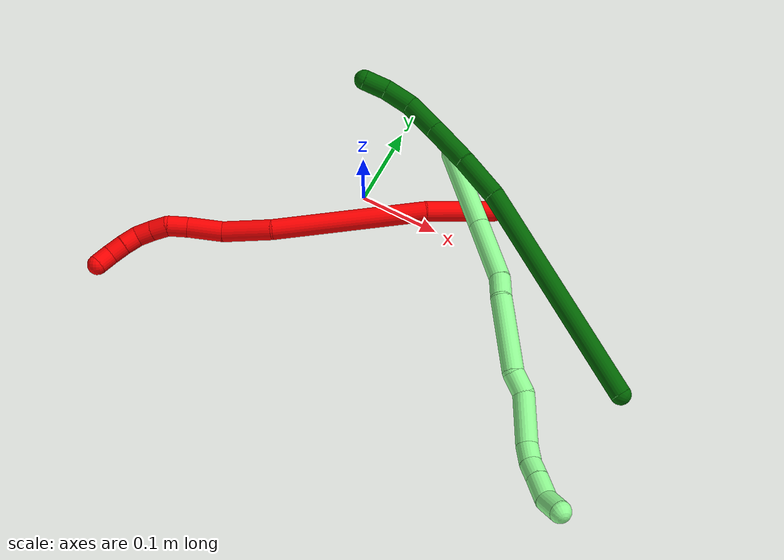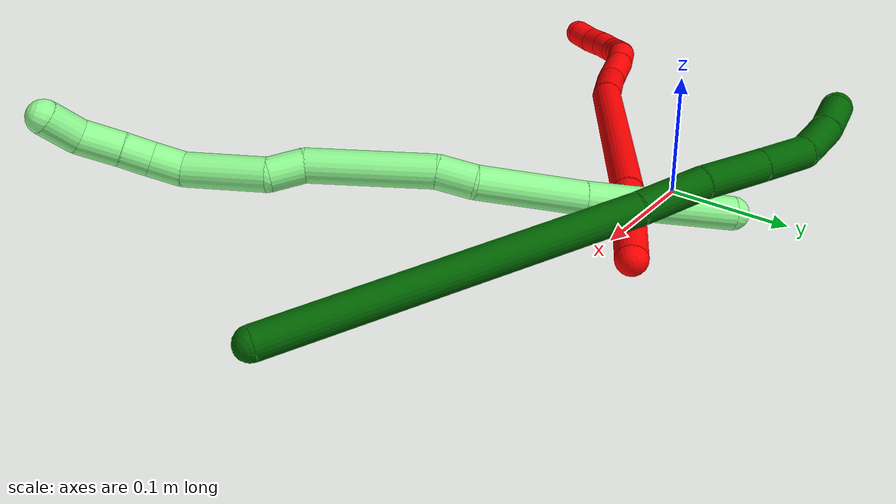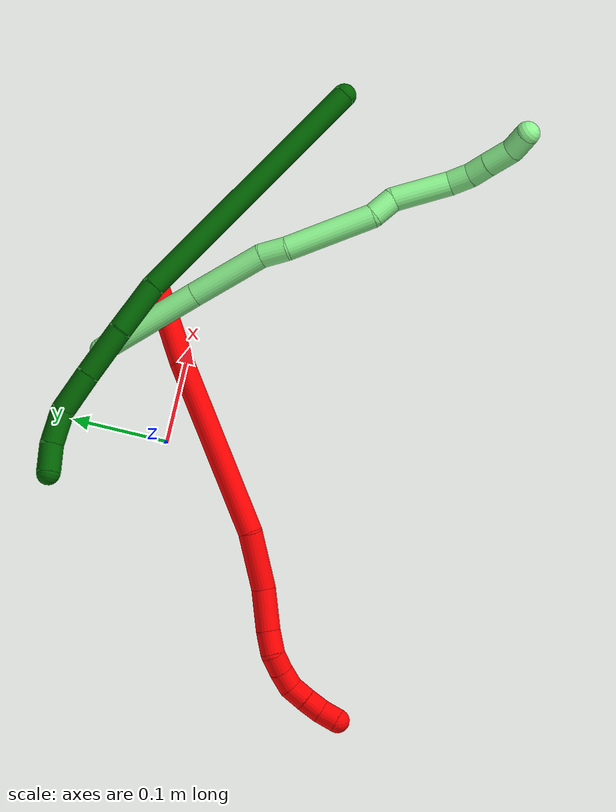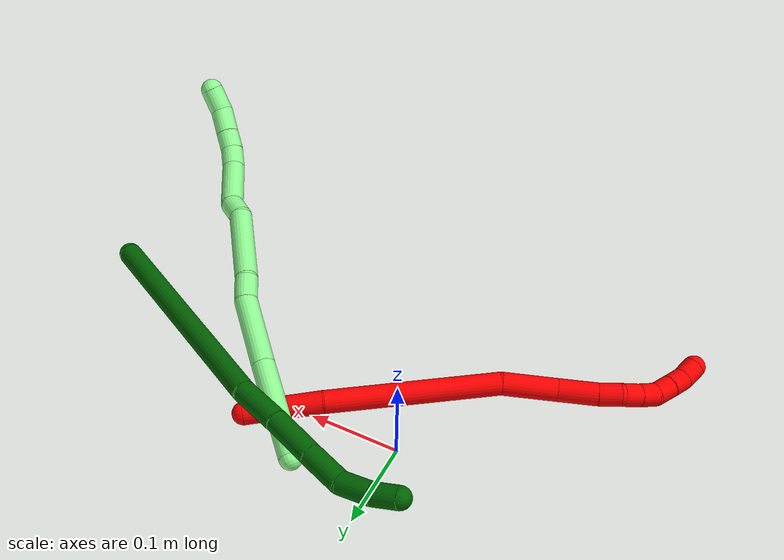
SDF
<sdf version="1.7">
 <world name="default">
  <model name="2">
   <static>0</static>
   <link name="2">
    <collision name="collision-cylinder-e_1_1_4">
     <pose>-0.014691 -0.006811 0.038754 0.173969 -0.357338 -0.031495</pose>
     <geometry><cylinder><radius>0.0125</radius><length>0.084002</length></cylinder></geometry>
     <surface>
      <friction><ode><mu>1.16</mu><mu2>1.16</mu2><slip1>0</slip1><slip2>0</slip2></ode></friction>
      <contact><ode><kp>1e+06</kp><kd>1</kd><max_vel>0</max_vel><min_depth>0.001</min_depth></ode></contact>
     </surface>
    </collision>
    <visual name="visual-cylinder-e_1_1_4">
     <pose>-0.014691 -0.006811 0.038754 0.173969 -0.357338 -0.031495</pose>
     <geometry><cylinder><radius>0.0125</radius><length>0.084002</length></cylinder></geometry>
     <material><ambient>1 0 0 1</ambient></material>
    </visual>
    <collision name="collision-cylinder-e_2_4_5">
     <pose>-0.060978 -0.015496 0.165579 0.021279 -0.344373 -0.003701</pose>
     <geometry><cylinder><radius>0.0125</radius><length>0.187172</length></cylinder></geometry>
     <surface>
      <friction><ode><mu>1.16</mu><mu2>1.16</mu2><slip1>0</slip1><slip2>0</slip2></ode></friction>
      <contact><ode><kp>1e+06</kp><kd>1</kd><max_vel>0</max_vel><min_depth>0.001</min_depth></ode></contact>
     </surface>
    </collision>
    <visual name="visual-cylinder-e_2_4_5">
     <pose>-0.060978 -0.015496 0.165579 0.021279 -0.344373 -0.003701</pose>
     <geometry><cylinder><radius>0.0125</radius><length>0.187172</length></cylinder></geometry>
     <material><ambient>1 0 0 1</ambient></material>
    </visual>
    <collision name="collision-cylinder-e_3_5_6">
     <pose>-0.096614 -0.016559 0.283581 -0.02711 -0.134152 0.001821</pose>
     <geometry><cylinder><radius>0.0125</radius><length>0.060426</length></cylinder></geometry>
     <surface>
      <friction><ode><mu>1.16</mu><mu2>1.16</mu2><slip1>0</slip1><slip2>0</slip2></ode></friction>
      <contact><ode><kp>1e+06</kp><kd>1</kd><max_vel>0</max_vel><min_depth>0.001</min_depth></ode></contact>
     </surface>
    </collision>
    <visual name="visual-cylinder-e_3_5_6">
     <pose>-0.096614 -0.016559 0.283581 -0.02711 -0.134152 0.001821</pose>
     <geometry><cylinder><radius>0.0125</radius><length>0.060426</length></cylinder></geometry>
     <material><ambient>1 0 0 1</ambient></material>
    </visual>
    <collision name="collision-cylinder-e_4_6_7">
     <pose>-0.102961 -0.019181 0.334794 0.15997 -0.106595 -0.008552</pose>
     <geometry><cylinder><radius>0.0125</radius><length>0.043361</length></cylinder></geometry>
     <surface>
      <friction><ode><mu>1.16</mu><mu2>1.16</mu2><slip1>0</slip1><slip2>0</slip2></ode></friction>
      <contact><ode><kp>1e+06</kp><kd>1</kd><max_vel>0</max_vel><min_depth>0.001</min_depth></ode></contact>
     </surface>
    </collision>
    <visual name="visual-cylinder-e_4_6_7">
     <pose>-0.102961 -0.019181 0.334794 0.15997 -0.106595 -0.008552</pose>
     <geometry><cylinder><radius>0.0125</radius><length>0.043361</length></cylinder></geometry>
     <material><ambient>1 0 0 1</ambient></material>
    </visual>
    <collision name="collision-cylinder-e_5_7_8">
     <pose>-0.107765 -0.024435 0.368008 0.151357 -0.204012 -0.015522</pose>
     <geometry><cylinder><radius>0.0125</radius><length>0.024652</length></cylinder></geometry>
     <surface>
      <friction><ode><mu>1.16</mu><mu2>1.16</mu2><slip1>0</slip1><slip2>0</slip2></ode></friction>
      <contact><ode><kp>1e+06</kp><kd>1</kd><max_vel>0</max_vel><min_depth>0.001</min_depth></ode></contact>
     </surface>
    </collision>
    <visual name="visual-cylinder-e_5_7_8">
     <pose>-0.107765 -0.024435 0.368008 0.151357 -0.204012 -0.015522</pose>
     <geometry><cylinder><radius>0.0125</radius><length>0.024652</length></cylinder></geometry>
     <material><ambient>1 0 0 1</ambient></material>
    </visual>
    <collision name="collision-cylinder-e_6_8_9">
     <pose>-0.112584 -0.02382 0.389413 -0.251593 -0.233057 0.029605</pose>
     <geometry><cylinder><radius>0.0125</radius><length>0.020103</length></cylinder></geometry>
     <surface>
      <friction><ode><mu>1.16</mu><mu2>1.16</mu2><slip1>0</slip1><slip2>0</slip2></ode></friction>
      <contact><ode><kp>1e+06</kp><kd>1</kd><max_vel>0</max_vel><min_depth>0.001</min_depth></ode></contact>
     </surface>
    </collision>
    <visual name="visual-cylinder-e_6_8_9">
     <pose>-0.112584 -0.02382 0.389413 -0.251593 -0.233057 0.029605</pose>
     <geometry><cylinder><radius>0.0125</radius><length>0.020103</length></cylinder></geometry>
     <material><ambient>1 0 0 1</ambient></material>
    </visual>
    <collision name="collision-cylinder-e_7_9_10">
     <pose>-0.1181 -0.018755 0.408131 -0.277185 -0.320874 0.045138</pose>
     <geometry><cylinder><radius>0.0125</radius><length>0.02026</length></cylinder></geometry>
     <surface>
      <friction><ode><mu>1.16</mu><mu2>1.16</mu2><slip1>0</slip1><slip2>0</slip2></ode></friction>
      <contact><ode><kp>1e+06</kp><kd>1</kd><max_vel>0</max_vel><min_depth>0.001</min_depth></ode></contact>
     </surface>
    </collision>
    <visual name="visual-cylinder-e_7_9_10">
     <pose>-0.1181 -0.018755 0.408131 -0.277185 -0.320874 0.045138</pose>
     <geometry><cylinder><radius>0.0125</radius><length>0.02026</length></cylinder></geometry>
     <material><ambient>1 0 0 1</ambient></material>
    </visual>
    <collision name="collision-cylinder-e_8_10_11">
     <pose>-0.127855 -0.013611 0.424507 -0.338933 -0.714655 0.127594</pose>
     <geometry><cylinder><radius>0.0125</radius><length>0.020018</length></cylinder></geometry>
     <surface>
      <friction><ode><mu>1.16</mu><mu2>1.16</mu2><slip1>0</slip1><slip2>0</slip2></ode></friction>
      <contact><ode><kp>1e+06</kp><kd>1</kd><max_vel>0</max_vel><min_depth>0.001</min_depth></ode></contact>
     </surface>
    </collision>
    <visual name="visual-cylinder-e_8_10_11">
     <pose>-0.127855 -0.013611 0.424507 -0.338933 -0.714655 0.127594</pose>
     <geometry><cylinder><radius>0.0125</radius><length>0.020018</length></cylinder></geometry>
     <material><ambient>1 0 0 1</ambient></material>
    </visual>
    <collision name="collision-cylinder-e_9_11_12">
     <pose>-0.140936 -0.007852 0.43849 -0.442246 -0.710279 0.166355</pose>
     <geometry><cylinder><radius>0.0125</radius><length>0.020004</length></cylinder></geometry>
     <surface>
      <friction><ode><mu>1.16</mu><mu2>1.16</mu2><slip1>0</slip1><slip2>0</slip2></ode></friction>
      <contact><ode><kp>1e+06</kp><kd>1</kd><max_vel>0</max_vel><min_depth>0.001</min_depth></ode></contact>
     </surface>
    </collision>
    <visual name="visual-cylinder-e_9_11_12">
     <pose>-0.140936 -0.007852 0.43849 -0.442246 -0.710279 0.166355</pose>
     <geometry><cylinder><radius>0.0125</radius><length>0.020004</length></cylinder></geometry>
     <material><ambient>1 0 0 1</ambient></material>
    </visual>
    <collision name="collision-cylinder-e_10_12_2">
     <pose>-0.155645 -0.002509 0.450691 -0.373723 -0.959052 0.196003</pose>
     <geometry><cylinder><radius>0.0125</radius><length>0.020002</length></cylinder></geometry>
     <surface>
      <friction><ode><mu>1.16</mu><mu2>1.16</mu2><slip1>0</slip1><slip2>0</slip2></ode></friction>
      <contact><ode><kp>1e+06</kp><kd>1</kd><max_vel>0</max_vel><min_depth>0.001</min_depth></ode></contact>
     </surface>
    </collision>
    <visual name="visual-cylinder-e_10_12_2">
     <pose>-0.155645 -0.002509 0.450691 -0.373723 -0.959052 0.196003</pose>
     <geometry><cylinder><radius>0.0125</radius><length>0.020002</length></cylinder></geometry>
     <material><ambient>1 0 0 1</ambient></material>
    </visual>
    <collision name="collision-sphere-2">
     <pose>-0.163832 -0.000413 0.456038 0 -0 0</pose>
     <geometry><sphere><radius>0.0125</radius></sphere></geometry>
     <surface>
      <friction><ode><mu>1.16</mu><mu2>1.16</mu2><slip1>0</slip1><slip2>0</slip2></ode></friction>
      <contact><ode><kp>1e+06</kp><kd>1</kd><max_vel>0</max_vel><min_depth>0.001</min_depth></ode></contact>
     </surface>
    </collision>
    <visual name="visual-sphere-2">
     <pose>-0.163832 -0.000413 0.456038 0 -0 0</pose>
     <geometry><sphere><radius>0.0125</radius></sphere></geometry>
     <material><ambient>1 0 0 1</ambient></material>
    </visual>
    <collision name="collision-sphere-12">
     <pose>-0.147458 -0.004606 0.445344 0 -0 0</pose>
     <geometry><sphere><radius>0.0125</radius></sphere></geometry>
     <surface>
      <friction><ode><mu>1.16</mu><mu2>1.16</mu2><slip1>0</slip1><slip2>0</slip2></ode></friction>
      <contact><ode><kp>1e+06</kp><kd>1</kd><max_vel>0</max_vel><min_depth>0.001</min_depth></ode></contact>
     </surface>
    </collision>
    <visual name="visual-sphere-12">
     <pose>-0.147458 -0.004606 0.445344 0 -0 0</pose>
     <geometry><sphere><radius>0.0125</radius></sphere></geometry>
     <material><ambient>1 0 0 1</ambient></material>
    </visual>
    <collision name="collision-sphere-11">
     <pose>-0.134414 -0.011097 0.431636 0 -0 0</pose>
     <geometry><sphere><radius>0.0125</radius></sphere></geometry>
     <surface>
      <friction><ode><mu>1.16</mu><mu2>1.16</mu2><slip1>0</slip1><slip2>0</slip2></ode></friction>
      <contact><ode><kp>1e+06</kp><kd>1</kd><max_vel>0</max_vel><min_depth>0.001</min_depth></ode></contact>
     </surface>
    </collision>
    <visual name="visual-sphere-11">
     <pose>-0.134414 -0.011097 0.431636 0 -0 0</pose>
     <geometry><sphere><radius>0.0125</radius></sphere></geometry>
     <material><ambient>1 0 0 1</ambient></material>
    </visual>
    <collision name="collision-sphere-10">
     <pose>-0.121295 -0.016124 0.417377 0 -0 0</pose>
     <geometry><sphere><radius>0.0125</radius></sphere></geometry>
     <surface>
      <friction><ode><mu>1.16</mu><mu2>1.16</mu2><slip1>0</slip1><slip2>0</slip2></ode></friction>
      <contact><ode><kp>1e+06</kp><kd>1</kd><max_vel>0</max_vel><min_depth>0.001</min_depth></ode></contact>
     </surface>
    </collision>
    <visual name="visual-sphere-10">
     <pose>-0.121295 -0.016124 0.417377 0 -0 0</pose>
     <geometry><sphere><radius>0.0125</radius></sphere></geometry>
     <material><ambient>1 0 0 1</ambient></material>
    </visual>
    <collision name="collision-sphere-9">
     <pose>-0.114906 -0.021385 0.398885 0 -0 0</pose>
     <geometry><sphere><radius>0.0125</radius></sphere></geometry>
     <surface>
      <friction><ode><mu>1.16</mu><mu2>1.16</mu2><slip1>0</slip1><slip2>0</slip2></ode></friction>
      <contact><ode><kp>1e+06</kp><kd>1</kd><max_vel>0</max_vel><min_depth>0.001</min_depth></ode></contact>
     </surface>
    </collision>
    <visual name="visual-sphere-9">
     <pose>-0.114906 -0.021385 0.398885 0 -0 0</pose>
     <geometry><sphere><radius>0.0125</radius></sphere></geometry>
     <material><ambient>1 0 0 1</ambient></material>
    </visual>
    <collision name="collision-sphere-4">
     <pose>-0.029382 -0.013622 0.077508 0 -0 0</pose>
     <geometry><sphere><radius>0.0125</radius></sphere></geometry>
     <surface>
      <friction><ode><mu>1.16</mu><mu2>1.16</mu2><slip1>0</slip1><slip2>0</slip2></ode></friction>
      <contact><ode><kp>1e+06</kp><kd>1</kd><max_vel>0</max_vel><min_depth>0.001</min_depth></ode></contact>
     </surface>
    </collision>
    <visual name="visual-sphere-4">
     <pose>-0.029382 -0.013622 0.077508 0 -0 0</pose>
     <geometry><sphere><radius>0.0125</radius></sphere></geometry>
     <material><ambient>1 0 0 1</ambient></material>
    </visual>
    <collision name="collision-sphere-1">
     <geometry><sphere><radius>0.0125</radius></sphere></geometry>
     <surface>
      <friction><ode><mu>1.16</mu><mu2>1.16</mu2><slip1>0</slip1><slip2>0</slip2></ode></friction>
      <contact><ode><kp>1e+06</kp><kd>1</kd><max_vel>0</max_vel><min_depth>0.001</min_depth></ode></contact>
     </surface>
    </collision>
    <visual name="visual-sphere-1">
     <geometry><sphere><radius>0.0125</radius></sphere></geometry>
     <material><ambient>1 0 0 1</ambient></material>
    </visual>
    <collision name="collision-sphere-8">
     <pose>-0.110263 -0.026255 0.379941 0 -0 0</pose>
     <geometry><sphere><radius>0.0125</radius></sphere></geometry>
     <surface>
      <friction><ode><mu>1.16</mu><mu2>1.16</mu2><slip1>0</slip1><slip2>0</slip2></ode></friction>
      <contact><ode><kp>1e+06</kp><kd>1</kd><max_vel>0</max_vel><min_depth>0.001</min_depth></ode></contact>
     </surface>
    </collision>
    <visual name="visual-sphere-8">
     <pose>-0.110263 -0.026255 0.379941 0 -0 0</pose>
     <geometry><sphere><radius>0.0125</radius></sphere></geometry>
     <material><ambient>1 0 0 1</ambient></material>
    </visual>
    <collision name="collision-sphere-5">
     <pose>-0.092573 -0.01737 0.25365 0 -0 0</pose>
     <geometry><sphere><radius>0.0125</radius></sphere></geometry>
     <surface>
      <friction><ode><mu>1.16</mu><mu2>1.16</mu2><slip1>0</slip1><slip2>0</slip2></ode></friction>
      <contact><ode><kp>1e+06</kp><kd>1</kd><max_vel>0</max_vel><min_depth>0.001</min_depth></ode></contact>
     </surface>
    </collision>
    <visual name="visual-sphere-5">
     <pose>-0.092573 -0.01737 0.25365 0 -0 0</pose>
     <geometry><sphere><radius>0.0125</radius></sphere></geometry>
     <material><ambient>1 0 0 1</ambient></material>
    </visual>
    <collision name="collision-sphere-6">
     <pose>-0.100655 -0.015747 0.313512 0 -0 0</pose>
     <geometry><sphere><radius>0.0125</radius></sphere></geometry>
     <surface>
      <friction><ode><mu>1.16</mu><mu2>1.16</mu2><slip1>0</slip1><slip2>0</slip2></ode></friction>
      <contact><ode><kp>1e+06</kp><kd>1</kd><max_vel>0</max_vel><min_depth>0.001</min_depth></ode></contact>
     </surface>
    </collision>
    <visual name="visual-sphere-6">
     <pose>-0.100655 -0.015747 0.313512 0 -0 0</pose>
     <geometry><sphere><radius>0.0125</radius></sphere></geometry>
     <material><ambient>1 0 0 1</ambient></material>
    </visual>
    <collision name="collision-sphere-7">
     <pose>-0.105268 -0.022615 0.356076 0 -0 0</pose>
     <geometry><sphere><radius>0.0125</radius></sphere></geometry>
     <surface>
      <friction><ode><mu>1.16</mu><mu2>1.16</mu2><slip1>0</slip1><slip2>0</slip2></ode></friction>
      <contact><ode><kp>1e+06</kp><kd>1</kd><max_vel>0</max_vel><min_depth>0.001</min_depth></ode></contact>
     </surface>
    </collision>
    <visual name="visual-sphere-7">
     <pose>-0.105268 -0.022615 0.356076 0 -0 0</pose>
     <geometry><sphere><radius>0.0125</radius></sphere></geometry>
     <material><ambient>1 0 0 1</ambient></material>
    </visual>
    <inertial>
     <pose>-0.077509 -0.014492 0.234706 0 -0 0</pose>
     <mass>0.5</mass>
     <inertia>
      <ixx>0.000592</ixx>
      <ixy>0</ixy>
      <ixz>0</ixz>
      <iyy>0.000641</iyy>
      <iyz>0</iyz>
      <izz>0.000268</izz>
     </inertia>
    </inertial>
   </link>
   <pose>0.154449 0.047677 0.026087 -1.80695 0.518367 1.78679</pose>
  </model>
  <model name="6">
   <static>0</static>
   <link name="6">
    <collision name="collision-cylinder-e_1_1_4">
     <pose>-0.06653 0.01912 -0.121096 -2.985 -0.497204 2.54207</pose>
     <geometry><cylinder><radius>0.0125</radius><length>0.278971</length></cylinder></geometry>
     <surface>
      <friction><ode><mu>1.16</mu><mu2>1.16</mu2><slip1>0</slip1><slip2>0</slip2></ode></friction>
      <contact><ode><kp>1e+06</kp><kd>1</kd><max_vel>0</max_vel><min_depth>0.001</min_depth></ode></contact>
     </surface>
    </collision>
    <visual name="visual-cylinder-e_1_1_4">
     <pose>-0.06653 0.01912 -0.121096 -2.985 -0.497204 2.54207</pose>
     <geometry><cylinder><radius>0.0125</radius><length>0.278971</length></cylinder></geometry>
     <material><ambient>0 0.392157 0.003922 1</ambient></material>
    </visual>
    <collision name="collision-cylinder-e_2_4_5">
     <pose>-0.142886 0.041292 -0.268197 -3.02475 -0.358975 2.51792</pose>
     <geometry><cylinder><radius>0.0125</radius><length>0.055931</length></cylinder></geometry>
     <surface>
      <friction><ode><mu>1.16</mu><mu2>1.16</mu2><slip1>0</slip1><slip2>0</slip2></ode></friction>
      <contact><ode><kp>1e+06</kp><kd>1</kd><max_vel>0</max_vel><min_depth>0.001</min_depth></ode></contact>
     </surface>
    </collision>
    <visual name="visual-cylinder-e_2_4_5">
     <pose>-0.142886 0.041292 -0.268197 -3.02475 -0.358975 2.51792</pose>
     <geometry><cylinder><radius>0.0125</radius><length>0.055931</length></cylinder></geometry>
     <material><ambient>0 0.392157 0.003922 1</ambient></material>
    </visual>
    <collision name="collision-cylinder-e_3_5_6">
     <pose>-0.160631 0.049862 -0.31995 -2.93051 -0.292165 1.89355</pose>
     <geometry><cylinder><radius>0.0125</radius><length>0.054997</length></cylinder></geometry>
     <surface>
      <friction><ode><mu>1.16</mu><mu2>1.16</mu2><slip1>0</slip1><slip2>0</slip2></ode></friction>
      <contact><ode><kp>1e+06</kp><kd>1</kd><max_vel>0</max_vel><min_depth>0.001</min_depth></ode></contact>
     </surface>
    </collision>
    <visual name="visual-cylinder-e_3_5_6">
     <pose>-0.160631 0.049862 -0.31995 -2.93051 -0.292165 1.89355</pose>
     <geometry><cylinder><radius>0.0125</radius><length>0.054997</length></cylinder></geometry>
     <material><ambient>0 0.392157 0.003922 1</ambient></material>
    </visual>
    <collision name="collision-cylinder-e_4_6_7">
     <pose>-0.174592 0.059698 -0.366911 -2.94076 -0.272135 1.87274</pose>
     <geometry><cylinder><radius>0.0125</radius><length>0.044949</length></cylinder></geometry>
     <surface>
      <friction><ode><mu>1.16</mu><mu2>1.16</mu2><slip1>0</slip1><slip2>0</slip2></ode></friction>
      <contact><ode><kp>1e+06</kp><kd>1</kd><max_vel>0</max_vel><min_depth>0.001</min_depth></ode></contact>
     </surface>
    </collision>
    <visual name="visual-cylinder-e_4_6_7">
     <pose>-0.174592 0.059698 -0.366911 -2.94076 -0.272135 1.87274</pose>
     <geometry><cylinder><radius>0.0125</radius><length>0.044949</length></cylinder></geometry>
     <material><ambient>0 0.392157 0.003922 1</ambient></material>
    </visual>
    <collision name="collision-cylinder-e_5_7_8">
     <pose>-0.182459 0.061837 -0.405822 3.01907 -0.102045 -1.38855</pose>
     <geometry><cylinder><radius>0.0125</radius><length>0.035851</length></cylinder></geometry>
     <surface>
      <friction><ode><mu>1.16</mu><mu2>1.16</mu2><slip1>0</slip1><slip2>0</slip2></ode></friction>
      <contact><ode><kp>1e+06</kp><kd>1</kd><max_vel>0</max_vel><min_depth>0.001</min_depth></ode></contact>
     </surface>
    </collision>
    <visual name="visual-cylinder-e_5_7_8">
     <pose>-0.182459 0.061837 -0.405822 3.01907 -0.102045 -1.38855</pose>
     <geometry><cylinder><radius>0.0125</radius><length>0.035851</length></cylinder></geometry>
     <material><ambient>0 0.392157 0.003922 1</ambient></material>
    </visual>
    <collision name="collision-cylinder-e_6_8_2">
     <pose>-0.183683 0.055769 -0.437633 2.87277 0.04106 0.301376</pose>
     <geometry><cylinder><radius>0.0125</radius><length>0.0293</length></cylinder></geometry>
     <surface>
      <friction><ode><mu>1.16</mu><mu2>1.16</mu2><slip1>0</slip1><slip2>0</slip2></ode></friction>
      <contact><ode><kp>1e+06</kp><kd>1</kd><max_vel>0</max_vel><min_depth>0.001</min_depth></ode></contact>
     </surface>
    </collision>
    <visual name="visual-cylinder-e_6_8_2">
     <pose>-0.183683 0.055769 -0.437633 2.87277 0.04106 0.301376</pose>
     <geometry><cylinder><radius>0.0125</radius><length>0.0293</length></cylinder></geometry>
     <material><ambient>0 0.392157 0.003922 1</ambient></material>
    </visual>
    <collision name="collision-sphere-2">
     <pose>-0.183082 0.051882 -0.451746 0 -0 0</pose>
     <geometry><sphere><radius>0.0125</radius></sphere></geometry>
     <surface>
      <friction><ode><mu>1.16</mu><mu2>1.16</mu2><slip1>0</slip1><slip2>0</slip2></ode></friction>
      <contact><ode><kp>1e+06</kp><kd>1</kd><max_vel>0</max_vel><min_depth>0.001</min_depth></ode></contact>
     </surface>
    </collision>
    <visual name="visual-sphere-2">
     <pose>-0.183082 0.051882 -0.451746 0 -0 0</pose>
     <geometry><sphere><radius>0.0125</radius></sphere></geometry>
     <material><ambient>0 0.392157 0.003922 1</ambient></material>
    </visual>
    <collision name="collision-sphere-4">
     <pose>-0.133061 0.03824 -0.242193 0 -0 0</pose>
     <geometry><sphere><radius>0.0125</radius></sphere></geometry>
     <surface>
      <friction><ode><mu>1.16</mu><mu2>1.16</mu2><slip1>0</slip1><slip2>0</slip2></ode></friction>
      <contact><ode><kp>1e+06</kp><kd>1</kd><max_vel>0</max_vel><min_depth>0.001</min_depth></ode></contact>
     </surface>
    </collision>
    <visual name="visual-sphere-4">
     <pose>-0.133061 0.03824 -0.242193 0 -0 0</pose>
     <geometry><sphere><radius>0.0125</radius></sphere></geometry>
     <material><ambient>0 0.392157 0.003922 1</ambient></material>
    </visual>
    <collision name="collision-sphere-1">
     <geometry><sphere><radius>0.0125</radius></sphere></geometry>
     <surface>
      <friction><ode><mu>1.16</mu><mu2>1.16</mu2><slip1>0</slip1><slip2>0</slip2></ode></friction>
      <contact><ode><kp>1e+06</kp><kd>1</kd><max_vel>0</max_vel><min_depth>0.001</min_depth></ode></contact>
     </surface>
    </collision>
    <visual name="visual-sphere-1">
     <geometry><sphere><radius>0.0125</radius></sphere></geometry>
     <material><ambient>0 0.392157 0.003922 1</ambient></material>
    </visual>
    <collision name="collision-sphere-8">
     <pose>-0.184285 0.059657 -0.423521 0 -0 0</pose>
     <geometry><sphere><radius>0.0125</radius></sphere></geometry>
     <surface>
      <friction><ode><mu>1.16</mu><mu2>1.16</mu2><slip1>0</slip1><slip2>0</slip2></ode></friction>
      <contact><ode><kp>1e+06</kp><kd>1</kd><max_vel>0</max_vel><min_depth>0.001</min_depth></ode></contact>
     </surface>
    </collision>
    <visual name="visual-sphere-8">
     <pose>-0.184285 0.059657 -0.423521 0 -0 0</pose>
     <geometry><sphere><radius>0.0125</radius></sphere></geometry>
     <material><ambient>0 0.392157 0.003922 1</ambient></material>
    </visual>
    <collision name="collision-sphere-5">
     <pose>-0.15271 0.044345 -0.294201 0 -0 0</pose>
     <geometry><sphere><radius>0.0125</radius></sphere></geometry>
     <surface>
      <friction><ode><mu>1.16</mu><mu2>1.16</mu2><slip1>0</slip1><slip2>0</slip2></ode></friction>
      <contact><ode><kp>1e+06</kp><kd>1</kd><max_vel>0</max_vel><min_depth>0.001</min_depth></ode></contact>
     </surface>
    </collision>
    <visual name="visual-sphere-5">
     <pose>-0.15271 0.044345 -0.294201 0 -0 0</pose>
     <geometry><sphere><radius>0.0125</radius></sphere></geometry>
     <material><ambient>0 0.392157 0.003922 1</ambient></material>
    </visual>
    <collision name="collision-sphere-6">
     <pose>-0.168551 0.055379 -0.345699 0 -0 0</pose>
     <geometry><sphere><radius>0.0125</radius></sphere></geometry>
     <surface>
      <friction><ode><mu>1.16</mu><mu2>1.16</mu2><slip1>0</slip1><slip2>0</slip2></ode></friction>
      <contact><ode><kp>1e+06</kp><kd>1</kd><max_vel>0</max_vel><min_depth>0.001</min_depth></ode></contact>
     </surface>
    </collision>
    <visual name="visual-sphere-6">
     <pose>-0.168551 0.055379 -0.345699 0 -0 0</pose>
     <geometry><sphere><radius>0.0125</radius></sphere></geometry>
     <material><ambient>0 0.392157 0.003922 1</ambient></material>
    </visual>
    <collision name="collision-sphere-7">
     <pose>-0.180633 0.064016 -0.388124 0 -0 0</pose>
     <geometry><sphere><radius>0.0125</radius></sphere></geometry>
     <surface>
      <friction><ode><mu>1.16</mu><mu2>1.16</mu2><slip1>0</slip1><slip2>0</slip2></ode></friction>
      <contact><ode><kp>1e+06</kp><kd>1</kd><max_vel>0</max_vel><min_depth>0.001</min_depth></ode></contact>
     </surface>
    </collision>
    <visual name="visual-sphere-7">
     <pose>-0.180633 0.064016 -0.388124 0 -0 0</pose>
     <geometry><sphere><radius>0.0125</radius></sphere></geometry>
     <material><ambient>0 0.392157 0.003922 1</ambient></material>
    </visual>
    <inertial>
     <pose>-0.110314 0.03384 -0.220487 0 -0 0</pose>
     <mass>0.5</mass>
     <inertia>
      <ixx>-0.000421</ixx>
      <ixy>0</ixy>
      <ixz>0</ixz>
      <iyy>0.002515</iyy>
      <iyz>0</iyz>
      <izz>0.000591</izz>
     </inertia>
    </inertial>
   </link>
   <pose>0.387556 -0.093728 0.026572 -1.59197 0.52806 -1.6169</pose>
  </model>
  <model name="13">
   <static>0</static>
   <link name="13">
    <collision name="collision-cylinder-e_1_1_4">
     <pose>0.011257 -0.015282 0.052944 0.281004 0.201506 0.028595</pose>
     <geometry><cylinder><radius>0.0125</radius><length>0.112487</length></cylinder></geometry>
     <surface>
      <friction><ode><mu>1.16</mu><mu2>1.16</mu2><slip1>0</slip1><slip2>0</slip2></ode></friction>
      <contact><ode><kp>1e+06</kp><kd>1</kd><max_vel>0</max_vel><min_depth>0.001</min_depth></ode></contact>
     </surface>
    </collision>
    <visual name="visual-cylinder-e_1_1_4">
     <pose>0.011257 -0.015282 0.052944 0.281004 0.201506 0.028595</pose>
     <geometry><cylinder><radius>0.0125</radius><length>0.112487</length></cylinder></geometry>
     <material><ambient>0.564706 0.984314 0.572549 1</ambient></material>
    </visual>
    <collision name="collision-cylinder-e_2_4_5">
     <pose>0.028989 -0.041009 0.143941 0.267897 0.162641 0.021964</pose>
     <geometry><cylinder><radius>0.0125</radius><length>0.079975</length></cylinder></geometry>
     <surface>
      <friction><ode><mu>1.16</mu><mu2>1.16</mu2><slip1>0</slip1><slip2>0</slip2></ode></friction>
      <contact><ode><kp>1e+06</kp><kd>1</kd><max_vel>0</max_vel><min_depth>0.001</min_depth></ode></contact>
     </surface>
    </collision>
    <visual name="visual-cylinder-e_2_4_5">
     <pose>0.028989 -0.041009 0.143941 0.267897 0.162641 0.021964</pose>
     <geometry><cylinder><radius>0.0125</radius><length>0.079975</length></cylinder></geometry>
     <material><ambient>0.564706 0.984314 0.572549 1</ambient></material>
    </visual>
    <collision name="collision-cylinder-e_3_5_6">
     <pose>0.035362 -0.057483 0.194446 0.450849 -0.007336 -0.001682</pose>
     <geometry><cylinder><radius>0.0125</radius><length>0.027671</length></cylinder></geometry>
     <surface>
      <friction><ode><mu>1.16</mu><mu2>1.16</mu2><slip1>0</slip1><slip2>0</slip2></ode></friction>
      <contact><ode><kp>1e+06</kp><kd>1</kd><max_vel>0</max_vel><min_depth>0.001</min_depth></ode></contact>
     </surface>
    </collision>
    <visual name="visual-cylinder-e_3_5_6">
     <pose>0.035362 -0.057483 0.194446 0.450849 -0.007336 -0.001682</pose>
     <geometry><cylinder><radius>0.0125</radius><length>0.027671</length></cylinder></geometry>
     <material><ambient>0.564706 0.984314 0.572549 1</ambient></material>
    </visual>
    <collision name="collision-cylinder-e_4_6_7">
     <pose>0.044931 -0.085315 0.246316 0.505263 0.211462 0.054779</pose>
     <geometry><cylinder><radius>0.0125</radius><length>0.092145</length></cylinder></geometry>
     <surface>
      <friction><ode><mu>1.16</mu><mu2>1.16</mu2><slip1>0</slip1><slip2>0</slip2></ode></friction>
      <contact><ode><kp>1e+06</kp><kd>1</kd><max_vel>0</max_vel><min_depth>0.001</min_depth></ode></contact>
     </surface>
    </collision>
    <visual name="visual-cylinder-e_4_6_7">
     <pose>0.044931 -0.085315 0.246316 0.505263 0.211462 0.054779</pose>
     <geometry><cylinder><radius>0.0125</radius><length>0.092145</length></cylinder></geometry>
     <material><ambient>0.564706 0.984314 0.572549 1</ambient></material>
    </visual>
    <collision name="collision-cylinder-e_5_7_8">
     <pose>0.061454 -0.110943 0.296173 0.351088 0.552423 0.100469</pose>
     <geometry><cylinder><radius>0.0125</radius><length>0.026121</length></cylinder></geometry>
     <surface>
      <friction><ode><mu>1.16</mu><mu2>1.16</mu2><slip1>0</slip1><slip2>0</slip2></ode></friction>
      <contact><ode><kp>1e+06</kp><kd>1</kd><max_vel>0</max_vel><min_depth>0.001</min_depth></ode></contact>
     </surface>
    </collision>
    <visual name="visual-cylinder-e_5_7_8">
     <pose>0.061454 -0.110943 0.296173 0.351088 0.552423 0.100469</pose>
     <geometry><cylinder><radius>0.0125</radius><length>0.026121</length></cylinder></geometry>
     <material><ambient>0.564706 0.984314 0.572549 1</ambient></material>
    </visual>
    <collision name="collision-cylinder-e_6_8_9">
     <pose>0.073488 -0.131233 0.331139 0.591279 0.173573 0.052985</pose>
     <geometry><cylinder><radius>0.0125</radius><length>0.059984</length></cylinder></geometry>
     <surface>
      <friction><ode><mu>1.16</mu><mu2>1.16</mu2><slip1>0</slip1><slip2>0</slip2></ode></friction>
      <contact><ode><kp>1e+06</kp><kd>1</kd><max_vel>0</max_vel><min_depth>0.001</min_depth></ode></contact>
     </surface>
    </collision>
    <visual name="visual-cylinder-e_6_8_9">
     <pose>0.073488 -0.131233 0.331139 0.591279 0.173573 0.052985</pose>
     <geometry><cylinder><radius>0.0125</radius><length>0.059984</length></cylinder></geometry>
     <material><ambient>0.564706 0.984314 0.572549 1</ambient></material>
    </visual>
    <collision name="collision-cylinder-e_7_9_10">
     <pose>0.078535 -0.151437 0.366767 0.324664 -0.011327 -0.001855</pose>
     <geometry><cylinder><radius>0.0125</radius><length>0.023428</length></cylinder></geometry>
     <surface>
      <friction><ode><mu>1.16</mu><mu2>1.16</mu2><slip1>0</slip1><slip2>0</slip2></ode></friction>
      <contact><ode><kp>1e+06</kp><kd>1</kd><max_vel>0</max_vel><min_depth>0.001</min_depth></ode></contact>
     </surface>
    </collision>
    <visual name="visual-cylinder-e_7_9_10">
     <pose>0.078535 -0.151437 0.366767 0.324664 -0.011327 -0.001855</pose>
     <geometry><cylinder><radius>0.0125</radius><length>0.023428</length></cylinder></geometry>
     <material><ambient>0.564706 0.984314 0.572549 1</ambient></material>
    </visual>
    <collision name="collision-cylinder-e_8_10_11">
     <pose>0.078405 -0.156481 0.388435 0.123133 0.000315 1.9e-05</pose>
     <geometry><cylinder><radius>0.0125</radius><length>0.021296</length></cylinder></geometry>
     <surface>
      <friction><ode><mu>1.16</mu><mu2>1.16</mu2><slip1>0</slip1><slip2>0</slip2></ode></friction>
      <contact><ode><kp>1e+06</kp><kd>1</kd><max_vel>0</max_vel><min_depth>0.001</min_depth></ode></contact>
     </surface>
    </collision>
    <visual name="visual-cylinder-e_8_10_11">
     <pose>0.078405 -0.156481 0.388435 0.123133 0.000315 1.9e-05</pose>
     <geometry><cylinder><radius>0.0125</radius><length>0.021296</length></cylinder></geometry>
     <material><ambient>0.564706 0.984314 0.572549 1</ambient></material>
    </visual>
    <collision name="collision-cylinder-e_9_11_12">
     <pose>0.078739 -0.160168 0.413592 0.161636 0.022367 0.001812</pose>
     <geometry><cylinder><radius>0.0125</radius><length>0.029571</length></cylinder></geometry>
     <surface>
      <friction><ode><mu>1.16</mu><mu2>1.16</mu2><slip1>0</slip1><slip2>0</slip2></ode></friction>
      <contact><ode><kp>1e+06</kp><kd>1</kd><max_vel>0</max_vel><min_depth>0.001</min_depth></ode></contact>
     </surface>
    </collision>
    <visual name="visual-cylinder-e_9_11_12">
     <pose>0.078739 -0.160168 0.413592 0.161636 0.022367 0.001812</pose>
     <geometry><cylinder><radius>0.0125</radius><length>0.029571</length></cylinder></geometry>
     <material><ambient>0.564706 0.984314 0.572549 1</ambient></material>
    </visual>
    <collision name="collision-cylinder-e_10_12_2">
     <pose>0.077378 -0.159206 0.441319 -0.248995 -0.124175 0.01556</pose>
     <geometry><cylinder><radius>0.0125</radius><length>0.027321</length></cylinder></geometry>
     <surface>
      <friction><ode><mu>1.16</mu><mu2>1.16</mu2><slip1>0</slip1><slip2>0</slip2></ode></friction>
      <contact><ode><kp>1e+06</kp><kd>1</kd><max_vel>0</max_vel><min_depth>0.001</min_depth></ode></contact>
     </surface>
    </collision>
    <visual name="visual-cylinder-e_10_12_2">
     <pose>0.077378 -0.159206 0.441319 -0.248995 -0.124175 0.01556</pose>
     <geometry><cylinder><radius>0.0125</radius><length>0.027321</length></cylinder></geometry>
     <material><ambient>0.564706 0.984314 0.572549 1</ambient></material>
    </visual>
    <collision name="collision-sphere-2">
     <pose>0.075686 -0.155866 0.454456 0 -0 0</pose>
     <geometry><sphere><radius>0.0125</radius></sphere></geometry>
     <surface>
      <friction><ode><mu>1.16</mu><mu2>1.16</mu2><slip1>0</slip1><slip2>0</slip2></ode></friction>
      <contact><ode><kp>1e+06</kp><kd>1</kd><max_vel>0</max_vel><min_depth>0.001</min_depth></ode></contact>
     </surface>
    </collision>
    <visual name="visual-sphere-2">
     <pose>0.075686 -0.155866 0.454456 0 -0 0</pose>
     <geometry><sphere><radius>0.0125</radius></sphere></geometry>
     <material><ambient>0.564706 0.984314 0.572549 1</ambient></material>
    </visual>
    <collision name="collision-sphere-12">
     <pose>0.07907 -0.162547 0.428181 0 -0 0</pose>
     <geometry><sphere><radius>0.0125</radius></sphere></geometry>
     <surface>
      <friction><ode><mu>1.16</mu><mu2>1.16</mu2><slip1>0</slip1><slip2>0</slip2></ode></friction>
      <contact><ode><kp>1e+06</kp><kd>1</kd><max_vel>0</max_vel><min_depth>0.001</min_depth></ode></contact>
     </surface>
    </collision>
    <visual name="visual-sphere-12">
     <pose>0.07907 -0.162547 0.428181 0 -0 0</pose>
     <geometry><sphere><radius>0.0125</radius></sphere></geometry>
     <material><ambient>0.564706 0.984314 0.572549 1</ambient></material>
    </visual>
    <collision name="collision-sphere-11">
     <pose>0.078409 -0.157789 0.399003 0 -0 0</pose>
     <geometry><sphere><radius>0.0125</radius></sphere></geometry>
     <surface>
      <friction><ode><mu>1.16</mu><mu2>1.16</mu2><slip1>0</slip1><slip2>0</slip2></ode></friction>
      <contact><ode><kp>1e+06</kp><kd>1</kd><max_vel>0</max_vel><min_depth>0.001</min_depth></ode></contact>
     </surface>
    </collision>
    <visual name="visual-sphere-11">
     <pose>0.078409 -0.157789 0.399003 0 -0 0</pose>
     <geometry><sphere><radius>0.0125</radius></sphere></geometry>
     <material><ambient>0.564706 0.984314 0.572549 1</ambient></material>
    </visual>
    <collision name="collision-sphere-10">
     <pose>0.078402 -0.155173 0.377868 0 -0 0</pose>
     <geometry><sphere><radius>0.0125</radius></sphere></geometry>
     <surface>
      <friction><ode><mu>1.16</mu><mu2>1.16</mu2><slip1>0</slip1><slip2>0</slip2></ode></friction>
      <contact><ode><kp>1e+06</kp><kd>1</kd><max_vel>0</max_vel><min_depth>0.001</min_depth></ode></contact>
     </surface>
    </collision>
    <visual name="visual-sphere-10">
     <pose>0.078402 -0.155173 0.377868 0 -0 0</pose>
     <geometry><sphere><radius>0.0125</radius></sphere></geometry>
     <material><ambient>0.564706 0.984314 0.572549 1</ambient></material>
    </visual>
    <collision name="collision-sphere-9">
     <pose>0.078667 -0.147701 0.355665 0 -0 0</pose>
     <geometry><sphere><radius>0.0125</radius></sphere></geometry>
     <surface>
      <friction><ode><mu>1.16</mu><mu2>1.16</mu2><slip1>0</slip1><slip2>0</slip2></ode></friction>
      <contact><ode><kp>1e+06</kp><kd>1</kd><max_vel>0</max_vel><min_depth>0.001</min_depth></ode></contact>
     </surface>
    </collision>
    <visual name="visual-sphere-9">
     <pose>0.078667 -0.147701 0.355665 0 -0 0</pose>
     <geometry><sphere><radius>0.0125</radius></sphere></geometry>
     <material><ambient>0.564706 0.984314 0.572549 1</ambient></material>
    </visual>
    <collision name="collision-sphere-4">
     <pose>0.022514 -0.030564 0.105888 0 -0 0</pose>
     <geometry><sphere><radius>0.0125</radius></sphere></geometry>
     <surface>
      <friction><ode><mu>1.16</mu><mu2>1.16</mu2><slip1>0</slip1><slip2>0</slip2></ode></friction>
      <contact><ode><kp>1e+06</kp><kd>1</kd><max_vel>0</max_vel><min_depth>0.001</min_depth></ode></contact>
     </surface>
    </collision>
    <visual name="visual-sphere-4">
     <pose>0.022514 -0.030564 0.105888 0 -0 0</pose>
     <geometry><sphere><radius>0.0125</radius></sphere></geometry>
     <material><ambient>0.564706 0.984314 0.572549 1</ambient></material>
    </visual>
    <collision name="collision-sphere-1">
     <geometry><sphere><radius>0.0125</radius></sphere></geometry>
     <surface>
      <friction><ode><mu>1.16</mu><mu2>1.16</mu2><slip1>0</slip1><slip2>0</slip2></ode></friction>
      <contact><ode><kp>1e+06</kp><kd>1</kd><max_vel>0</max_vel><min_depth>0.001</min_depth></ode></contact>
     </surface>
    </collision>
    <visual name="visual-sphere-1">
     <geometry><sphere><radius>0.0125</radius></sphere></geometry>
     <material><ambient>0.564706 0.984314 0.572549 1</ambient></material>
    </visual>
    <collision name="collision-sphere-8">
     <pose>0.068308 -0.114766 0.306613 0 -0 0</pose>
     <geometry><sphere><radius>0.0125</radius></sphere></geometry>
     <surface>
      <friction><ode><mu>1.16</mu><mu2>1.16</mu2><slip1>0</slip1><slip2>0</slip2></ode></friction>
      <contact><ode><kp>1e+06</kp><kd>1</kd><max_vel>0</max_vel><min_depth>0.001</min_depth></ode></contact>
     </surface>
    </collision>
    <visual name="visual-sphere-8">
     <pose>0.068308 -0.114766 0.306613 0 -0 0</pose>
     <geometry><sphere><radius>0.0125</radius></sphere></geometry>
     <material><ambient>0.564706 0.984314 0.572549 1</ambient></material>
    </visual>
    <collision name="collision-sphere-5">
     <pose>0.035464 -0.051454 0.181993 0 -0 0</pose>
     <geometry><sphere><radius>0.0125</radius></sphere></geometry>
     <surface>
      <friction><ode><mu>1.16</mu><mu2>1.16</mu2><slip1>0</slip1><slip2>0</slip2></ode></friction>
      <contact><ode><kp>1e+06</kp><kd>1</kd><max_vel>0</max_vel><min_depth>0.001</min_depth></ode></contact>
     </surface>
    </collision>
    <visual name="visual-sphere-5">
     <pose>0.035464 -0.051454 0.181993 0 -0 0</pose>
     <geometry><sphere><radius>0.0125</radius></sphere></geometry>
     <material><ambient>0.564706 0.984314 0.572549 1</ambient></material>
    </visual>
    <collision name="collision-sphere-6">
     <pose>0.035261 -0.063511 0.206899 0 -0 0</pose>
     <geometry><sphere><radius>0.0125</radius></sphere></geometry>
     <surface>
      <friction><ode><mu>1.16</mu><mu2>1.16</mu2><slip1>0</slip1><slip2>0</slip2></ode></friction>
      <contact><ode><kp>1e+06</kp><kd>1</kd><max_vel>0</max_vel><min_depth>0.001</min_depth></ode></contact>
     </surface>
    </collision>
    <visual name="visual-sphere-6">
     <pose>0.035261 -0.063511 0.206899 0 -0 0</pose>
     <geometry><sphere><radius>0.0125</radius></sphere></geometry>
     <material><ambient>0.564706 0.984314 0.572549 1</ambient></material>
    </visual>
    <collision name="collision-sphere-7">
     <pose>0.054601 -0.107119 0.285734 0 -0 0</pose>
     <geometry><sphere><radius>0.0125</radius></sphere></geometry>
     <surface>
      <friction><ode><mu>1.16</mu><mu2>1.16</mu2><slip1>0</slip1><slip2>0</slip2></ode></friction>
      <contact><ode><kp>1e+06</kp><kd>1</kd><max_vel>0</max_vel><min_depth>0.001</min_depth></ode></contact>
     </surface>
    </collision>
    <visual name="visual-sphere-7">
     <pose>0.054601 -0.107119 0.285734 0 -0 0</pose>
     <geometry><sphere><radius>0.0125</radius></sphere></geometry>
     <material><ambient>0.564706 0.984314 0.572549 1</ambient></material>
    </visual>
    <inertial>
     <pose>0.045337 -0.082374 0.228593 0 -0 0</pose>
     <mass>0.5</mass>
     <inertia>
      <ixx>0.000283</ixx>
      <ixy>0</ixy>
      <ixz>0</ixz>
      <iyy>0.000252</iyy>
      <iyz>0</iyz>
      <izz>7.6e-05</izz>
     </inertia>
    </inertial>
   </link>
   <pose>0.076321 0.085674 0.040704 0.76996 0.82916 0.240819</pose>
  </model>
 </world>
</sdf>
